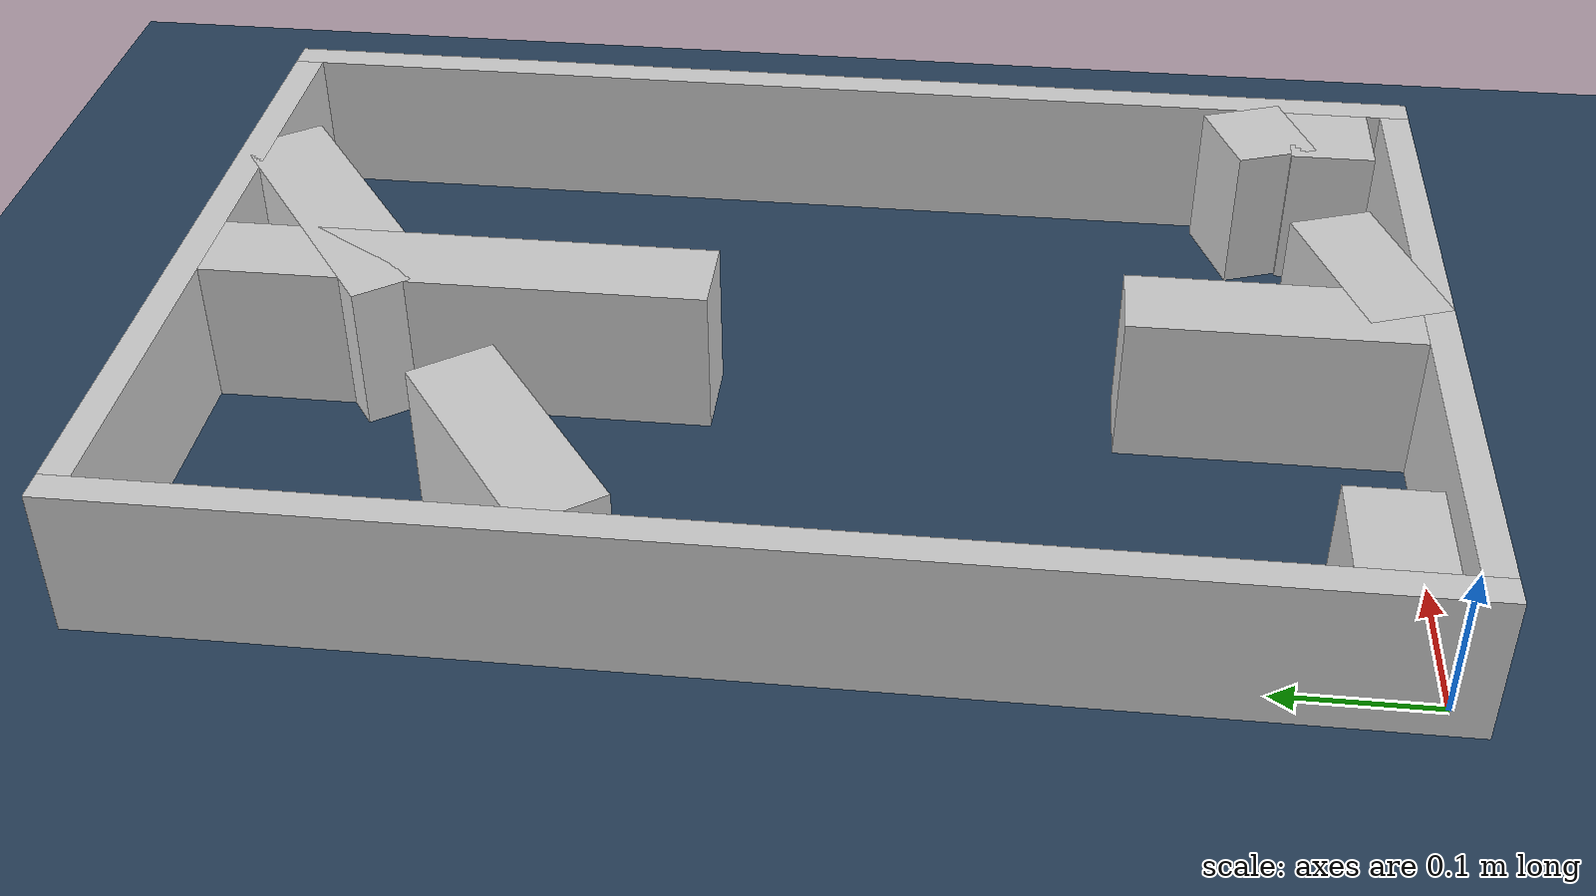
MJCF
<?xml version="1.0" ?>
<mujoco model="generated_real_template">
  <compiler angle="degree"/>
  <option timestep="0.002" integrator="implicitfast" iterations="100" cone="elliptic"/>
  <default>
    <geom density="1"/>
  </default>
  <asset>
    <texture builtin="gradient" height="3072" rgb1="0.3 0.5 0.7" rgb2="0 0 0" type="skybox" width="512"/>
    <texture builtin="checker" height="300" mark="edge" markrgb="0.8 0.8 0.8" name="groundplane" rgb1="0.2 0.3 0.4" rgb2="0.1 0.2 0.3" type="2d" width="300"/>
    <material name="groundplane" reflectance="0.2" texrepeat="5 5" texture="groundplane" texuniform="true"/>
  </asset>
  <worldbody>
    <light dir="0 0 -1" directional="true" pos="0 0 1.5"/>
    <geom name="floor" type="plane" condim="4" friction="0.5 0.005 0.001" material="groundplane" size="0 0 0.05"/>
    <body name="walls">
      <geom name="wall_boundary_left" type="box" condim="4" friction="1.0 0.005 0.0001" rgba="0.8 0.8 0.8 1" pos="-0.010000 0.387500 0.050000" euler="0 0 0.000000" size="0.010000 0.407500 0.050000"/>
      <geom name="wall_boundary_right" type="box" condim="4" friction="1.0 0.005 0.0001" rgba="0.8 0.8 0.8 1" pos="0.500000 0.387500 0.050000" euler="0 0 0.000000" size="0.010000 0.407500 0.050000"/>
      <geom name="wall_boundary_bottom" type="box" condim="4" friction="1.0 0.005 0.0001" rgba="0.8 0.8 0.8 1" pos="0.245000 -0.010000 0.050000" euler="0 0 0.000000" size="0.245000 0.010000 0.050000"/>
      <geom name="wall_boundary_top" type="box" condim="4" friction="1.0 0.005 0.0001" rgba="0.8 0.8 0.8 1" pos="0.245000 0.785000 0.050000" euler="0 0 0.000000" size="0.245000 0.010000 0.050000"/>
      <geom name="wall_inner_1_1" type="box" condim="4" friction="1.0 0.005 0.0001" rgba="0.8 0.8 0.8 1" pos="0.295984 0.027207 0.050000" euler="0 0 20.088647" size="0.059508 0.028500 0.050000"/>
      <geom name="wall_inner_1_2" type="box" condim="4" friction="1.0 0.005 0.0001" rgba="0.8 0.8 0.8 1" pos="0.459571 0.087034 0.050000" euler="0 0 20.088647" size="0.032400 0.028500 0.050000"/>
      <geom name="wall_inner_2_1" type="box" condim="4" friction="1.0 0.005 0.0001" rgba="0.8 0.8 0.8 1" pos="0.034349 0.038247 0.050000" euler="0 0 0.000000" size="0.034349 0.028500 0.050000"/>
      <geom name="wall_inner_2_2" type="box" condim="4" friction="1.0 0.005 0.0001" rgba="0.8 0.8 0.8 1" pos="0.459591 0.038247 0.050000" euler="0 0 0.000000" size="0.030409 0.028500 0.050000"/>
      <geom name="wall_inner_3_1" type="box" condim="4" friction="1.0 0.005 0.0001" rgba="0.8 0.8 0.8 1" pos="0.066554 0.542456 0.050000" euler="0 0 36.067864" size="0.082336 0.028500 0.050000"/>
      <geom name="wall_inner_3_2" type="box" condim="4" friction="1.0 0.005 0.0001" rgba="0.8 0.8 0.8 1" pos="0.294483 0.708470 0.050000" euler="0 0 36.067864" size="0.107844 0.028500 0.050000"/>
      <geom name="wall_inner_4_1" type="box" condim="4" friction="1.0 0.005 0.0001" rgba="0.8 0.8 0.8 1" pos="0.239237 0.092293 0.050000" euler="0 0 90.000000" size="0.092293 0.028500 0.050000"/>
      <geom name="wall_inner_4_2" type="box" condim="4" friction="1.0 0.005 0.0001" rgba="0.8 0.8 0.8 1" pos="0.239237 0.610024 0.050000" euler="0 0 90.000000" size="0.164976 0.028500 0.050000"/>
    </body>
  </worldbody>
</mujoco>
